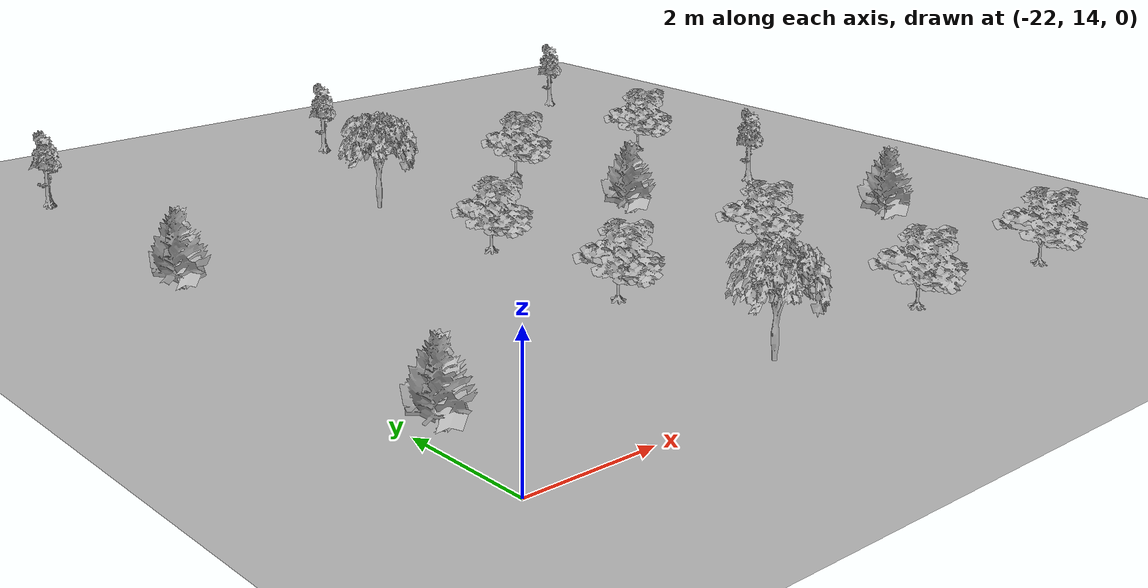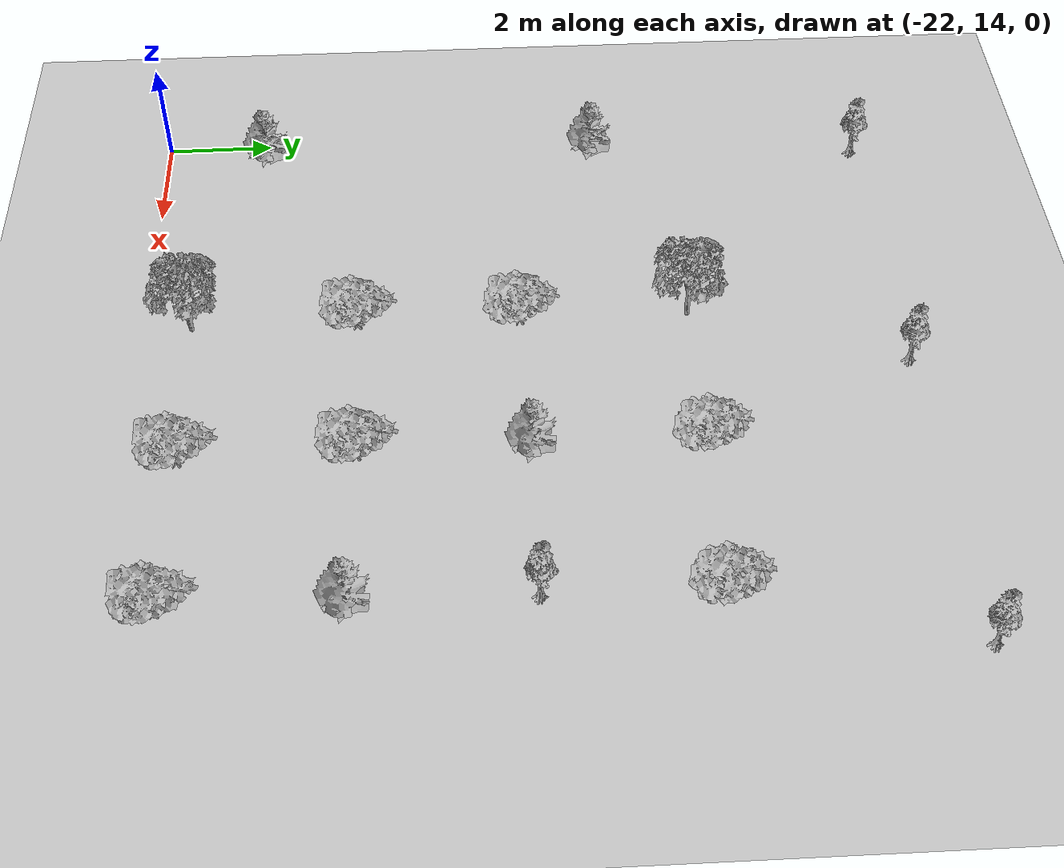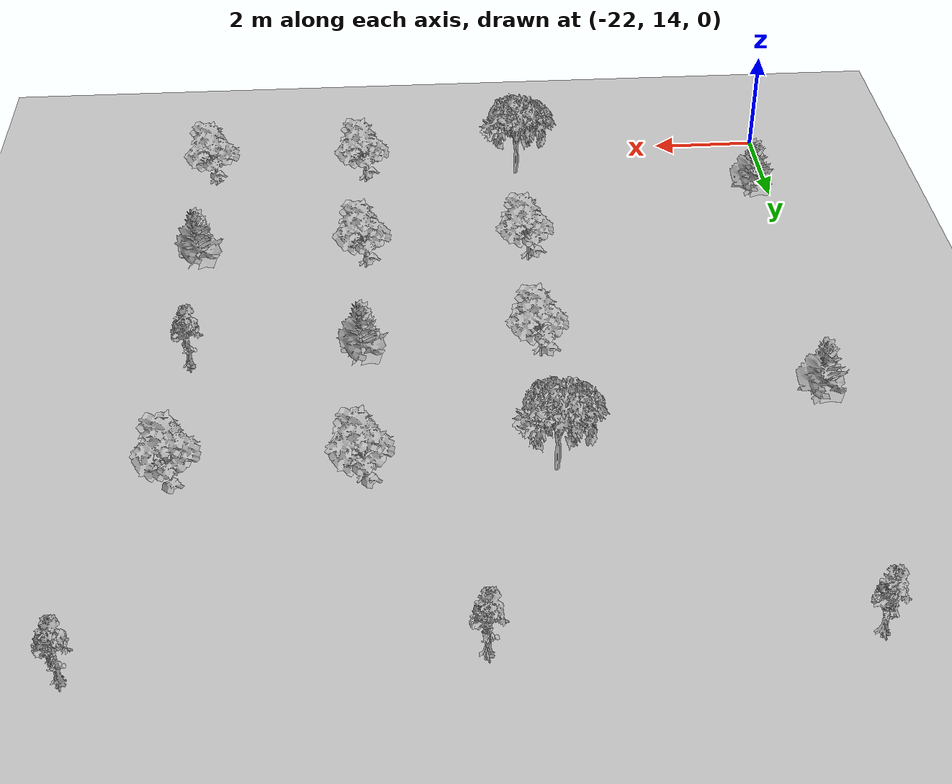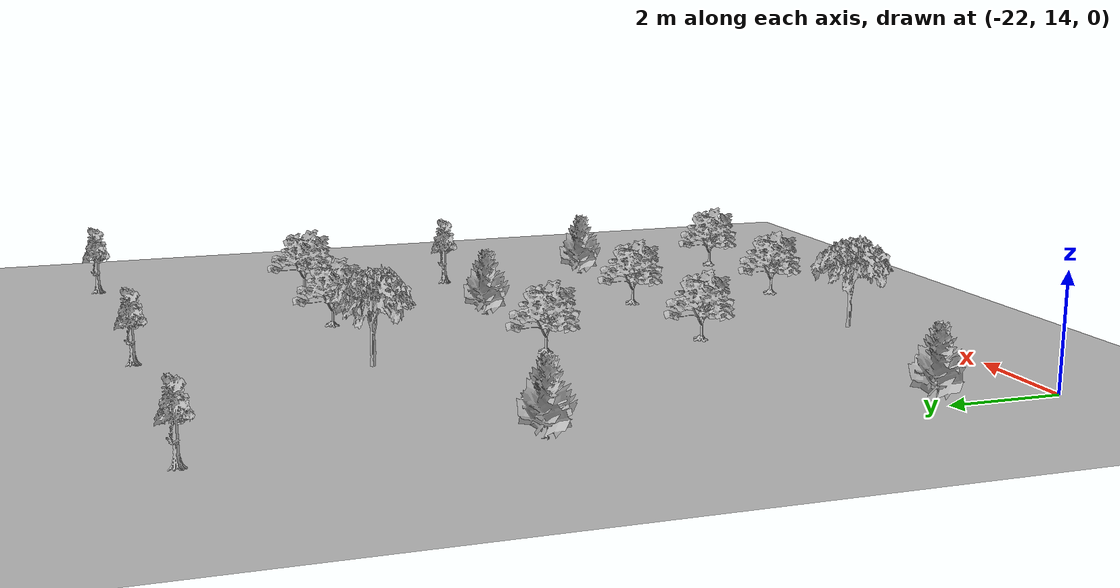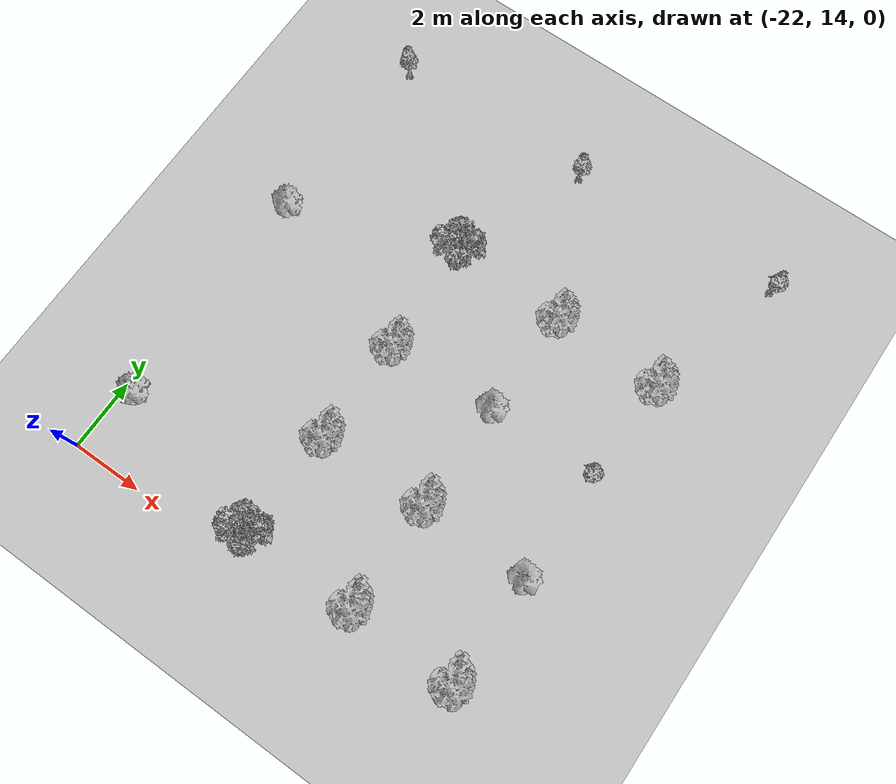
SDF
<sdf version="1.6">
 <world name="default">
  <model name="ground_plane">
   <static>1</static>
   <link name="link">
    <collision name="collision">
     <geometry><plane><normal>0 0 1</normal><size>100 100</size></plane></geometry>
     <surface>
      <contact><collide_bitmask>65535</collide_bitmask></contact>
      <friction><ode><mu>100</mu><mu2>50</mu2></ode></friction>
     </surface>
    </collision>
    <visual name="visual">
     <cast_shadows>0</cast_shadows>
     <geometry><plane><normal>0 0 1</normal><size>100 100</size></plane></geometry>
     <material>
      <script><uri>file://media/materials/scripts/gazebo.material</uri><name>Gazebo/Grey</name></script>
     </material>
    </visual>
   </link>
  </model>
  <model name="Tree 1_0_clone_0">
   <static>1</static>
   <pose>-10.8472 14.7593 0 1.57079 -0 0</pose>
   <link name="link">
    <collision name="collision">
     <geometry><mesh><scale>1.2 1.2 1.2</scale><uri>model://tree_1/meshes/tree_1.obj</uri></mesh></geometry>
    </collision>
    <visual name="visual">
     <geometry><mesh><scale>1.2 1.2 1.2</scale><uri>model://tree_1/meshes/tree_1.obj</uri></mesh></geometry>
    </visual>
   </link>
  </model>
  <model name="Tree 5_clone_2">
   <static>1</static>
   <pose>-10.7514 17.773 0 1.57079 -0 0</pose>
   <link name="link">
    <collision name="collision">
     <geometry><mesh><scale>1 1 1</scale><uri>model://tree_5/meshes/tree.obj</uri></mesh></geometry>
    </collision>
    <visual name="visual">
     <geometry><mesh><scale>1 1 1</scale><uri>model://tree_5/meshes/tree.obj</uri></mesh></geometry>
    </visual>
   </link>
  </model>
  <model name="Tree 4_clone_1">
   <static>1</static>
   <pose>-10.7971 20.8377 0 1.57079 -0 0</pose>
   <link name="link">
    <collision name="collision">
     <geometry><mesh><scale>0.3 0.3 0.3</scale><uri>model://tree_4/meshes/tree_4.obj</uri></mesh></geometry>
    </collision>
    <visual name="visual">
     <geometry><mesh><scale>0.3 0.3 0.3</scale><uri>model://tree_4/meshes/tree_4.obj</uri></mesh></geometry>
    </visual>
   </link>
  </model>
  <model name="Tree 1_0_clone_1_clone_clone">
   <static>1</static>
   <pose>-10.7407 23.7914 0 1.57079 -0 0</pose>
   <link name="link">
    <collision name="collision">
     <geometry><mesh><scale>1.2 1.2 1.2</scale><uri>model://tree_1/meshes/tree_1.obj</uri></mesh></geometry>
    </collision>
    <visual name="visual">
     <geometry><mesh><scale>1.2 1.2 1.2</scale><uri>model://tree_1/meshes/tree_1.obj</uri></mesh></geometry>
    </visual>
   </link>
  </model>
  <model name="Tree 1_0_clone_1">
   <static>1</static>
   <pose>-13.866 17.8547 0 1.57079 -0 0</pose>
   <link name="link">
    <collision name="collision">
     <geometry><mesh><scale>1.2 1.2 1.2</scale><uri>model://tree_1/meshes/tree_1.obj</uri></mesh></geometry>
    </collision>
    <visual name="visual">
     <geometry><mesh><scale>1.2 1.2 1.2</scale><uri>model://tree_1/meshes/tree_1.obj</uri></mesh></geometry>
    </visual>
   </link>
  </model>
  <model name="Tree 5_clone_3">
   <static>1</static>
   <pose>-13.8036 20.8631 0 1.57079 -0 0</pose>
   <link name="link">
    <collision name="collision">
     <geometry><mesh><scale>1 1 1</scale><uri>model://tree_5/meshes/tree.obj</uri></mesh></geometry>
    </collision>
    <visual name="visual">
     <geometry><mesh><scale>1 1 1</scale><uri>model://tree_5/meshes/tree.obj</uri></mesh></geometry>
    </visual>
   </link>
  </model>
  <model name="Tree 2 0.7_clone_2_clone_0">
   <static>1</static>
   <pose>-16.9779 14.8297 0 1.57079 -0 0</pose>
   <link name="link">
    <collision name="collision">
     <geometry><mesh><scale>0.7 0.7 0.7</scale><uri>model://tree_2/meshes/tree_2.obj</uri></mesh></geometry>
    </collision>
    <visual name="visual">
     <geometry><mesh><scale>0.7 0.7 0.7</scale><uri>model://tree_2/meshes/tree_2.obj</uri></mesh></geometry>
    </visual>
   </link>
  </model>
  <model name="Tree 1_clone_0">
   <static>1</static>
   <pose>-13.8794 14.8253 0 1.57079 -0 0</pose>
   <link name="link">
    <collision name="collision">
     <geometry><mesh><scale>1.2 1.2 1.2</scale><uri>model://tree_1/meshes/tree_1.obj</uri></mesh></geometry>
    </collision>
    <visual name="visual">
     <geometry><mesh><scale>1.2 1.2 1.2</scale><uri>model://tree_1/meshes/tree_1.obj</uri></mesh></geometry>
    </visual>
   </link>
  </model>
  <model name="Tree 1_clone_0_clone">
   <static>1</static>
   <pose>-13.8099 23.8682 0 1.57079 -0 0</pose>
   <link name="link">
    <collision name="collision">
     <geometry><mesh><scale>1.2 1.2 1.2</scale><uri>model://tree_1/meshes/tree_1.obj</uri></mesh></geometry>
    </collision>
    <visual name="visual">
     <geometry><mesh><scale>1.2 1.2 1.2</scale><uri>model://tree_1/meshes/tree_1.obj</uri></mesh></geometry>
    </visual>
   </link>
  </model>
  <model name="Tree 1_clone_1">
   <static>1</static>
   <pose>-16.9534 17.816 0 1.57079 -0 0</pose>
   <link name="link">
    <collision name="collision">
     <geometry><mesh><scale>1.2 1.2 1.2</scale><uri>model://tree_1/meshes/tree_1.obj</uri></mesh></geometry>
    </collision>
    <visual name="visual">
     <geometry><mesh><scale>1.2 1.2 1.2</scale><uri>model://tree_1/meshes/tree_1.obj</uri></mesh></geometry>
    </visual>
   </link>
  </model>
  <model name="Tree 1_clone_1_clone">
   <static>1</static>
   <pose>-16.9227 20.7659 0 1.57079 -0 0</pose>
   <link name="link">
    <collision name="collision">
     <geometry><mesh><scale>1.2 1.2 1.2</scale><uri>model://tree_1/meshes/tree_1.obj</uri></mesh></geometry>
    </collision>
    <visual name="visual">
     <geometry><mesh><scale>1.2 1.2 1.2</scale><uri>model://tree_1/meshes/tree_1.obj</uri></mesh></geometry>
    </visual>
   </link>
  </model>
  <model name="Tree 2 0.7_clone_2_clone_0_clone">
   <static>1</static>
   <pose>-16.9216 23.8497 0 1.57079 -0 0</pose>
   <link name="link">
    <collision name="collision">
     <geometry><mesh><scale>0.7 0.7 0.7</scale><uri>model://tree_2/meshes/tree_2.obj</uri></mesh></geometry>
    </collision>
    <visual name="visual">
     <geometry><mesh><scale>0.7 0.7 0.7</scale><uri>model://tree_2/meshes/tree_2.obj</uri></mesh></geometry>
    </visual>
   </link>
  </model>
  <model name="Tree 4_clone_3_clone_clone">
   <static>1</static>
   <pose>-9.5424 27.7998 0 1.57079 -0 0</pose>
   <link name="link">
    <collision name="collision">
     <geometry><mesh><scale>0.3 0.3 0.3</scale><uri>model://tree_4/meshes/tree_4.obj</uri></mesh></geometry>
    </collision>
    <visual name="visual">
     <geometry><mesh><scale>0.3 0.3 0.3</scale><uri>model://tree_4/meshes/tree_4.obj</uri></mesh></geometry>
    </visual>
   </link>
  </model>
  <model name="Tree 4_clone_3_clone_clone_clone">
   <static>1</static>
   <pose>-15.5306 27.6736 0 1.57079 -0 0</pose>
   <link name="link">
    <collision name="collision">
     <geometry><mesh><scale>0.3 0.3 0.3</scale><uri>model://tree_4/meshes/tree_4.obj</uri></mesh></geometry>
    </collision>
    <visual name="visual">
     <geometry><mesh><scale>0.3 0.3 0.3</scale><uri>model://tree_4/meshes/tree_4.obj</uri></mesh></geometry>
    </visual>
   </link>
  </model>
  <model name="Tree 4_clone_3_clone_clone_clone_clone">
   <static>1</static>
   <pose>-21.2347 27.6278 0 1.57079 -0 0</pose>
   <link name="link">
    <collision name="collision">
     <geometry><mesh><scale>0.3 0.3 0.3</scale><uri>model://tree_4/meshes/tree_4.obj</uri></mesh></geometry>
    </collision>
    <visual name="visual">
     <geometry><mesh><scale>0.3 0.3 0.3</scale><uri>model://tree_4/meshes/tree_4.obj</uri></mesh></geometry>
    </visual>
   </link>
  </model>
  <model name="Tree 5_clone_4">
   <static>1</static>
   <pose>-21.5324 22.401 0 1.57079 -0 0</pose>
   <link name="link">
    <collision name="collision">
     <geometry><mesh><scale>1 1 1</scale><uri>model://tree_5/meshes/tree.obj</uri></mesh></geometry>
    </collision>
    <visual name="visual">
     <geometry><mesh><scale>1 1 1</scale><uri>model://tree_5/meshes/tree.obj</uri></mesh></geometry>
    </visual>
   </link>
  </model>
  <model name="Tree 5_clone_4_clone">
   <static>1</static>
   <pose>-21.6172 15.9738 0 1.57079 -0 0</pose>
   <link name="link">
    <collision name="collision">
     <geometry><mesh><scale>1 1 1</scale><uri>model://tree_5/meshes/tree.obj</uri></mesh></geometry>
    </collision>
    <visual name="visual">
     <geometry><mesh><scale>1 1 1</scale><uri>model://tree_5/meshes/tree.obj</uri></mesh></geometry>
    </visual>
   </link>
  </model>
 </world>
</sdf>
